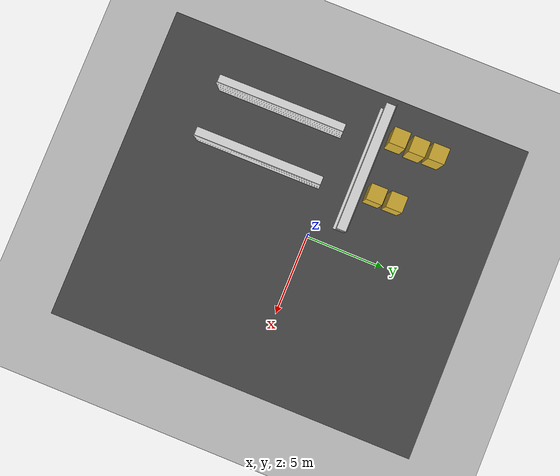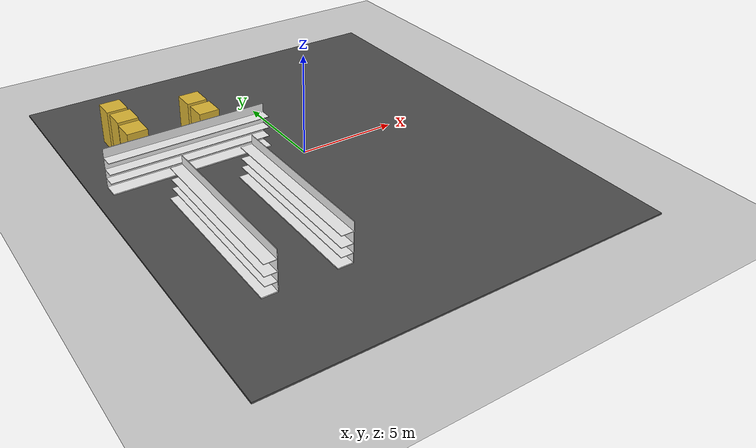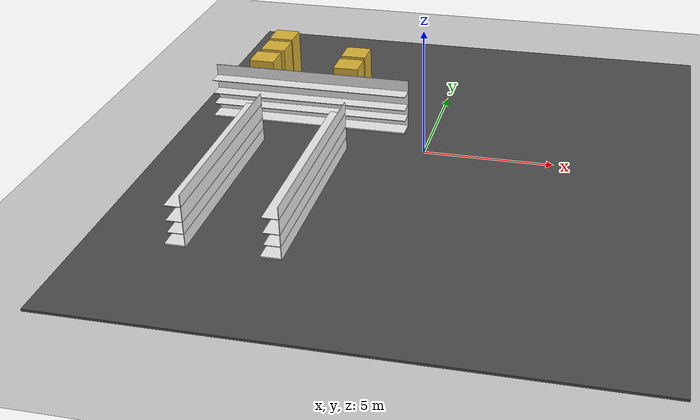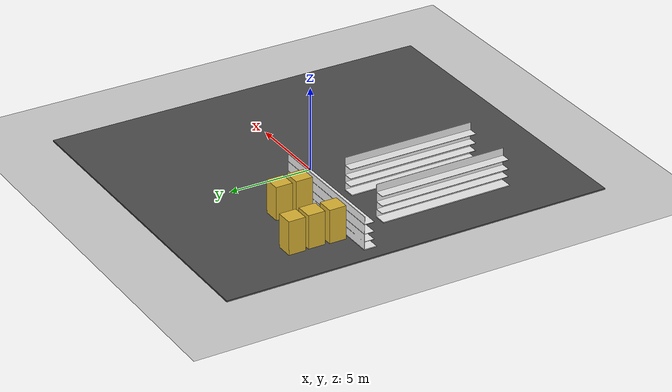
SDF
<sdf version="1.6">
 <world name="default">
  <model name="ground_plane">
   <static>1</static>
   <link name="link">
    <collision name="collision">
     <geometry><plane><normal>0 0 1</normal><size>100 100</size></plane></geometry>
     <surface>
      <contact><collide_bitmask>65535</collide_bitmask></contact>
      <friction><ode><mu>100</mu><mu2>50</mu2></ode></friction>
     </surface>
    </collision>
    <visual name="visual">
     <cast_shadows>0</cast_shadows>
     <geometry><plane><normal>0 0 1</normal><size>100 100</size></plane></geometry>
     <material>
      <script><uri>file://media/materials/scripts/gazebo.material</uri><name>Gazebo/Grey</name></script>
     </material>
    </visual>
   </link>
  </model>
  <model name="asphalt_plane">
   <static>1</static>
   <link name="link">
    <collision name="collision"><geometry><box><size>20 23.3157 0.1</size></box></geometry></collision>
    <visual name="visual">
     <cast_shadows>0</cast_shadows>
     <geometry><box><size>20 23.3157 0.1</size></box></geometry>
     <material>
      <script>
       <uri>model://asphalt_plane/materials/scripts</uri>
       <uri>model://asphalt_plane/materials/textures</uri>
       <name>vrc/asphalt</name>
      </script>
     </material>
    </visual>
   </link>
   <pose>0.082168 -0.989597 0 0 -0 0</pose>
  </model>
  <model name="LongShelfx4">
   <link name="link_0">
    <inertial>
     <mass>0.38468</mass>
     <inertia>
      <ixx>0.0321196</ixx>
      <ixy>0</ixy>
      <ixz>0</ixz>
      <iyy>2.41752</iyy>
      <iyz>0</iyz>
      <izz>2.44951</izz>
     </inertia>
    </inertial>
    <pose>-4.95428 0.681381 -0.638013 0 -0 0</pose>
    <visual name="visual">
     <geometry><box><size>8 0.75 0.05</size></box></geometry>
     <material>
      <lighting>1</lighting>
      <script><uri>file://media/materials/scripts/gazebo.material</uri><name>Gazebo/White</name></script>
      <shader type="vertex"><normal_map>__default__</normal_map></shader>
      <ambient>0.3 0.3 0.3 1</ambient>
      <diffuse>0.7 0.7 0.7 1</diffuse>
      <specular>0.01 0.01 0.01 1</specular>
      <emissive>0 0 0 1</emissive>
     </material>
    </visual>
    <collision name="collision">
     <geometry><box><size>8 0.75 0.05</size></box></geometry>
     <surface>
      <friction>
       <ode><mu>1</mu><mu2>1</mu2><fdir1>0 0 0</fdir1><slip1>0</slip1><slip2>0</slip2></ode>
       <torsional>
        <coefficient>1</coefficient>
        <patch_radius>0</patch_radius>
        <surface_radius>0</surface_radius>
        <use_patch_radius>1</use_patch_radius>
        <ode><slip>0</slip></ode>
       </torsional>
      </friction>
      <bounce><restitution_coefficient>0</restitution_coefficient><threshold>1e+06</threshold></bounce>
      <contact>
       <collide_without_contact>0</collide_without_contact>
       <collide_without_contact_bitmask>1</collide_without_contact_bitmask>
       <collide_bitmask>1</collide_bitmask>
       <ode>
        <soft_cfm>0</soft_cfm>
        <soft_erp>0.2</soft_erp>
        <kp>1e+13</kp>
        <kd>1</kd>
        <max_vel>0.01</max_vel>
        <min_depth>0</min_depth>
       </ode>
       <bullet>
        <split_impulse>1</split_impulse>
        <split_impulse_penetration_threshold>-0.01</split_impulse_penetration_threshold>
        <soft_cfm>0</soft_cfm>
        <soft_erp>0.2</soft_erp>
        <kp>1e+13</kp>
        <kd>1</kd>
       </bullet>
      </contact>
     </surface>
    </collision>
   </link>
   <link name="link_1">
    <inertial>
     <mass>0.748605</mass>
     <inertia><ixx>0.445095</ixx><ixy>0</ixy><ixz>0</ixz><iyy>5.12268</iyy><iyz>0</iyz><izz>4.67771</izz></inertia>
    </inertial>
    <pose>-4.95468 0.318881 0.335328 0 -0 0</pose>
    <visual name="visual">
     <geometry><box><size>8 0.025 2</size></box></geometry>
     <material>
      <lighting>1</lighting>
      <script><uri>file://media/materials/scripts/gazebo.material</uri><name>Gazebo/White</name></script>
      <shader type="vertex"><normal_map>__default__</normal_map></shader>
      <ambient>0.3 0.3 0.3 1</ambient>
      <diffuse>0.7 0.7 0.7 1</diffuse>
      <specular>0.01 0.01 0.01 1</specular>
      <emissive>0 0 0 1</emissive>
     </material>
    </visual>
    <collision name="collision">
     <geometry><box><size>8 0.025 2</size></box></geometry>
     <surface>
      <friction>
       <ode><mu>1</mu><mu2>1</mu2><fdir1>0 0 0</fdir1><slip1>0</slip1><slip2>0</slip2></ode>
       <torsional>
        <coefficient>1</coefficient>
        <patch_radius>0</patch_radius>
        <surface_radius>0</surface_radius>
        <use_patch_radius>1</use_patch_radius>
        <ode><slip>0</slip></ode>
       </torsional>
      </friction>
      <bounce><restitution_coefficient>0</restitution_coefficient><threshold>1e+06</threshold></bounce>
      <contact>
       <collide_without_contact>0</collide_without_contact>
       <collide_without_contact_bitmask>1</collide_without_contact_bitmask>
       <collide_bitmask>1</collide_bitmask>
       <ode>
        <soft_cfm>0</soft_cfm>
        <soft_erp>0.2</soft_erp>
        <kp>1e+13</kp>
        <kd>1</kd>
        <max_vel>0.01</max_vel>
        <min_depth>0</min_depth>
       </ode>
       <bullet>
        <split_impulse>1</split_impulse>
        <split_impulse_penetration_threshold>-0.01</split_impulse_penetration_threshold>
        <soft_cfm>0</soft_cfm>
        <soft_erp>0.2</soft_erp>
        <kp>1e+13</kp>
        <kd>1</kd>
       </bullet>
      </contact>
     </surface>
    </collision>
   </link>
   <link name="link_2">
    <inertial>
     <mass>0.0597214</mass>
     <inertia>
      <ixx>0.00742007</ixx>
      <ixy>0</ixy>
      <ixz>0</ixz>
      <iyy>0.00498871</iyy>
      <iyz>0</iyz>
      <izz>0.0123849</izz>
     </inertia>
    </inertial>
    <pose>-4.95438 0.606368 0.295639 0 -0 0</pose>
    <visual name="visual">
     <geometry><box><size>8 0.6 0.025</size></box></geometry>
     <material>
      <lighting>1</lighting>
      <script><uri>file://media/materials/scripts/gazebo.material</uri><name>Gazebo/White</name></script>
      <shader type="vertex"><normal_map>__default__</normal_map></shader>
      <ambient>0.3 0.3 0.3 1</ambient>
      <diffuse>0.7 0.7 0.7 1</diffuse>
      <specular>0.01 0.01 0.01 1</specular>
      <emissive>0 0 0 1</emissive>
     </material>
    </visual>
    <collision name="collision">
     <geometry><box><size>8 0.600001 0.025</size></box></geometry>
     <surface>
      <friction>
       <ode><mu>1</mu><mu2>1</mu2><fdir1>0 0 0</fdir1><slip1>0</slip1><slip2>0</slip2></ode>
       <torsional>
        <coefficient>1</coefficient>
        <patch_radius>0</patch_radius>
        <surface_radius>0</surface_radius>
        <use_patch_radius>1</use_patch_radius>
        <ode><slip>0</slip></ode>
       </torsional>
      </friction>
      <bounce><restitution_coefficient>0</restitution_coefficient><threshold>1e+06</threshold></bounce>
      <contact>
       <collide_without_contact>0</collide_without_contact>
       <collide_without_contact_bitmask>1</collide_without_contact_bitmask>
       <collide_bitmask>1</collide_bitmask>
       <ode>
        <soft_cfm>0</soft_cfm>
        <soft_erp>0.2</soft_erp>
        <kp>1e+13</kp>
        <kd>1</kd>
        <max_vel>0.01</max_vel>
        <min_depth>0</min_depth>
       </ode>
       <bullet>
        <split_impulse>1</split_impulse>
        <split_impulse_penetration_threshold>-0.01</split_impulse_penetration_threshold>
        <soft_cfm>0</soft_cfm>
        <soft_erp>0.2</soft_erp>
        <kp>1e+13</kp>
        <kd>1</kd>
       </bullet>
      </contact>
     </surface>
    </collision>
   </link>
   <link name="link_2_clone">
    <inertial>
     <mass>0.0597214</mass>
     <inertia>
      <ixx>0.00742007</ixx>
      <ixy>0</ixy>
      <ixz>0</ixz>
      <iyy>0.00498871</iyy>
      <iyz>0</iyz>
      <izz>0.0123849</izz>
     </inertia>
    </inertial>
    <pose>-4.95438 0.606361 0.871858 0 -0 0</pose>
    <visual name="visual">
     <geometry><box><size>8 0.6 0.025</size></box></geometry>
     <material>
      <lighting>1</lighting>
      <script><uri>file://media/materials/scripts/gazebo.material</uri><name>Gazebo/White</name></script>
      <shader type="vertex"><normal_map>__default__</normal_map></shader>
      <ambient>0.3 0.3 0.3 1</ambient>
      <diffuse>0.7 0.7 0.7 1</diffuse>
      <specular>0.01 0.01 0.01 1</specular>
      <emissive>0 0 0 1</emissive>
     </material>
    </visual>
    <collision name="collision">
     <geometry><box><size>8 0.600001 0.025</size></box></geometry>
     <surface>
      <friction>
       <ode><mu>1</mu><mu2>1</mu2><fdir1>0 0 0</fdir1><slip1>0</slip1><slip2>0</slip2></ode>
       <torsional>
        <coefficient>1</coefficient>
        <patch_radius>0</patch_radius>
        <surface_radius>0</surface_radius>
        <use_patch_radius>1</use_patch_radius>
        <ode><slip>0</slip></ode>
       </torsional>
      </friction>
      <bounce><restitution_coefficient>0</restitution_coefficient><threshold>1e+06</threshold></bounce>
      <contact>
       <collide_without_contact>0</collide_without_contact>
       <collide_without_contact_bitmask>1</collide_without_contact_bitmask>
       <collide_bitmask>1</collide_bitmask>
       <ode>
        <soft_cfm>0</soft_cfm>
        <soft_erp>0.2</soft_erp>
        <kp>1e+13</kp>
        <kd>1</kd>
        <max_vel>0.01</max_vel>
        <min_depth>0</min_depth>
       </ode>
       <bullet>
        <split_impulse>1</split_impulse>
        <split_impulse_penetration_threshold>-0.01</split_impulse_penetration_threshold>
        <soft_cfm>0</soft_cfm>
        <soft_erp>0.2</soft_erp>
        <kp>1e+13</kp>
        <kd>1</kd>
       </bullet>
      </contact>
     </surface>
    </collision>
   </link>
   <link name="link_2_clone_0">
    <inertial>
     <mass>0.0597214</mass>
     <inertia>
      <ixx>0.00742007</ixx>
      <ixy>0</ixy>
      <ixz>0</ixz>
      <iyy>0.00498871</iyy>
      <iyz>0</iyz>
      <izz>0.0123849</izz>
     </inertia>
    </inertial>
    <pose>-4.95438 0.606375 -0.163574 0 -0 0</pose>
    <visual name="visual">
     <geometry><box><size>8 0.6 0.025</size></box></geometry>
     <material>
      <lighting>1</lighting>
      <script><uri>file://media/materials/scripts/gazebo.material</uri><name>Gazebo/White</name></script>
      <shader type="vertex"><normal_map>__default__</normal_map></shader>
      <ambient>0.3 0.3 0.3 1</ambient>
      <diffuse>0.7 0.7 0.7 1</diffuse>
      <specular>0.01 0.01 0.01 1</specular>
      <emissive>0 0 0 1</emissive>
     </material>
    </visual>
    <collision name="collision">
     <geometry><box><size>8 0.600001 0.025</size></box></geometry>
     <surface>
      <friction>
       <ode><mu>1</mu><mu2>1</mu2><fdir1>0 0 0</fdir1><slip1>0</slip1><slip2>0</slip2></ode>
       <torsional>
        <coefficient>1</coefficient>
        <patch_radius>0</patch_radius>
        <surface_radius>0</surface_radius>
        <use_patch_radius>1</use_patch_radius>
        <ode><slip>0</slip></ode>
       </torsional>
      </friction>
      <bounce><restitution_coefficient>0</restitution_coefficient><threshold>1e+06</threshold></bounce>
      <contact>
       <collide_without_contact>0</collide_without_contact>
       <collide_without_contact_bitmask>1</collide_without_contact_bitmask>
       <collide_bitmask>1</collide_bitmask>
       <ode>
        <soft_cfm>0</soft_cfm>
        <soft_erp>0.2</soft_erp>
        <kp>1e+13</kp>
        <kd>1</kd>
        <max_vel>0.01</max_vel>
        <min_depth>0</min_depth>
       </ode>
       <bullet>
        <split_impulse>1</split_impulse>
        <split_impulse_penetration_threshold>-0.01</split_impulse_penetration_threshold>
        <soft_cfm>0</soft_cfm>
        <soft_erp>0.2</soft_erp>
        <kp>1e+13</kp>
        <kd>1</kd>
       </bullet>
      </contact>
     </surface>
    </collision>
   </link>
   <joint name="link_1_JOINT_4" type="fixed">
    <parent>link_1</parent>
    <child>link_0</child>
    <physics>
     <ode><limit><cfm>0</cfm><erp>0.2</erp></limit><suspension><cfm>0</cfm><erp>0.2</erp></suspension></ode>
    </physics>
   </joint>
   <joint name="link_1_JOINT_5" type="fixed">
    <parent>link_1</parent>
    <child>link_2_clone_0</child>
    <physics>
     <ode><limit><cfm>0</cfm><erp>0.2</erp></limit><suspension><cfm>0</cfm><erp>0.2</erp></suspension></ode>
    </physics>
   </joint>
   <joint name="link_1_JOINT_6" type="fixed">
    <parent>link_1</parent>
    <child>link_2</child>
    <physics>
     <ode><limit><cfm>0</cfm><erp>0.2</erp></limit><suspension><cfm>0</cfm><erp>0.2</erp></suspension></ode>
    </physics>
   </joint>
   <joint name="link_1_JOINT_7" type="fixed">
    <parent>link_1</parent>
    <child>link_2_clone</child>
    <physics>
     <ode><limit><cfm>0</cfm><erp>0.2</erp></limit><suspension><cfm>0</cfm><erp>0.2</erp></suspension></ode>
    </physics>
   </joint>
   <static>0</static>
   <pose>-10.0239 2.31947 0.715428 -0.002288 -0 -3.14125</pose>
  </model>
  <model name="LongShelfx4_clone_0_clone">
   <link name="link_0">
    <inertial>
     <mass>0.38468</mass>
     <inertia>
      <ixx>0.0321196</ixx>
      <ixy>0</ixy>
      <ixz>0</ixz>
      <iyy>2.41752</iyy>
      <iyz>0</iyz>
      <izz>2.44951</izz>
     </inertia>
    </inertial>
    <pose>-4.95428 0.681381 -0.638013 0 -0 0</pose>
    <visual name="visual">
     <geometry><box><size>8 0.75 0.05</size></box></geometry>
     <material>
      <lighting>1</lighting>
      <script><uri>file://media/materials/scripts/gazebo.material</uri><name>Gazebo/White</name></script>
      <shader type="vertex"><normal_map>__default__</normal_map></shader>
      <ambient>0.3 0.3 0.3 1</ambient>
      <diffuse>0.7 0.7 0.7 1</diffuse>
      <specular>0.01 0.01 0.01 1</specular>
      <emissive>0 0 0 1</emissive>
     </material>
    </visual>
    <collision name="collision">
     <geometry><box><size>8 0.75 0.05</size></box></geometry>
     <surface>
      <friction>
       <ode><mu>1</mu><mu2>1</mu2><fdir1>0 0 0</fdir1><slip1>0</slip1><slip2>0</slip2></ode>
       <torsional>
        <coefficient>1</coefficient>
        <patch_radius>0</patch_radius>
        <surface_radius>0</surface_radius>
        <use_patch_radius>1</use_patch_radius>
        <ode><slip>0</slip></ode>
       </torsional>
      </friction>
      <bounce><restitution_coefficient>0</restitution_coefficient><threshold>1e+06</threshold></bounce>
      <contact>
       <collide_without_contact>0</collide_without_contact>
       <collide_without_contact_bitmask>1</collide_without_contact_bitmask>
       <collide_bitmask>1</collide_bitmask>
       <ode>
        <soft_cfm>0</soft_cfm>
        <soft_erp>0.2</soft_erp>
        <kp>1e+13</kp>
        <kd>1</kd>
        <max_vel>0.01</max_vel>
        <min_depth>0</min_depth>
       </ode>
       <bullet>
        <split_impulse>1</split_impulse>
        <split_impulse_penetration_threshold>-0.01</split_impulse_penetration_threshold>
        <soft_cfm>0</soft_cfm>
        <soft_erp>0.2</soft_erp>
        <kp>1e+13</kp>
        <kd>1</kd>
       </bullet>
      </contact>
     </surface>
    </collision>
   </link>
   <link name="link_1">
    <inertial>
     <mass>0.748605</mass>
     <inertia><ixx>0.445095</ixx><ixy>0</ixy><ixz>0</ixz><iyy>5.12268</iyy><iyz>0</iyz><izz>4.67771</izz></inertia>
    </inertial>
    <pose>-4.95468 0.318881 0.335328 0 -0 0</pose>
    <visual name="visual">
     <geometry><box><size>8 0.025 2</size></box></geometry>
     <material>
      <lighting>1</lighting>
      <script><uri>file://media/materials/scripts/gazebo.material</uri><name>Gazebo/White</name></script>
      <shader type="vertex"><normal_map>__default__</normal_map></shader>
      <ambient>0.3 0.3 0.3 1</ambient>
      <diffuse>0.7 0.7 0.7 1</diffuse>
      <specular>0.01 0.01 0.01 1</specular>
      <emissive>0 0 0 1</emissive>
     </material>
    </visual>
    <collision name="collision">
     <geometry><box><size>8 0.025 2</size></box></geometry>
     <surface>
      <friction>
       <ode><mu>1</mu><mu2>1</mu2><fdir1>0 0 0</fdir1><slip1>0</slip1><slip2>0</slip2></ode>
       <torsional>
        <coefficient>1</coefficient>
        <patch_radius>0</patch_radius>
        <surface_radius>0</surface_radius>
        <use_patch_radius>1</use_patch_radius>
        <ode><slip>0</slip></ode>
       </torsional>
      </friction>
      <bounce><restitution_coefficient>0</restitution_coefficient><threshold>1e+06</threshold></bounce>
      <contact>
       <collide_without_contact>0</collide_without_contact>
       <collide_without_contact_bitmask>1</collide_without_contact_bitmask>
       <collide_bitmask>1</collide_bitmask>
       <ode>
        <soft_cfm>0</soft_cfm>
        <soft_erp>0.2</soft_erp>
        <kp>1e+13</kp>
        <kd>1</kd>
        <max_vel>0.01</max_vel>
        <min_depth>0</min_depth>
       </ode>
       <bullet>
        <split_impulse>1</split_impulse>
        <split_impulse_penetration_threshold>-0.01</split_impulse_penetration_threshold>
        <soft_cfm>0</soft_cfm>
        <soft_erp>0.2</soft_erp>
        <kp>1e+13</kp>
        <kd>1</kd>
       </bullet>
      </contact>
     </surface>
    </collision>
   </link>
   <link name="link_2">
    <inertial>
     <mass>0.0597214</mass>
     <inertia>
      <ixx>0.00742007</ixx>
      <ixy>0</ixy>
      <ixz>0</ixz>
      <iyy>0.00498871</iyy>
      <iyz>0</iyz>
      <izz>0.0123849</izz>
     </inertia>
    </inertial>
    <pose>-4.95438 0.606368 0.295639 0 -0 0</pose>
    <visual name="visual">
     <geometry><box><size>8 0.6 0.025</size></box></geometry>
     <material>
      <lighting>1</lighting>
      <script><uri>file://media/materials/scripts/gazebo.material</uri><name>Gazebo/White</name></script>
      <shader type="vertex"><normal_map>__default__</normal_map></shader>
      <ambient>0.3 0.3 0.3 1</ambient>
      <diffuse>0.7 0.7 0.7 1</diffuse>
      <specular>0.01 0.01 0.01 1</specular>
      <emissive>0 0 0 1</emissive>
     </material>
    </visual>
    <collision name="collision">
     <geometry><box><size>8 0.600001 0.025</size></box></geometry>
     <surface>
      <friction>
       <ode><mu>1</mu><mu2>1</mu2><fdir1>0 0 0</fdir1><slip1>0</slip1><slip2>0</slip2></ode>
       <torsional>
        <coefficient>1</coefficient>
        <patch_radius>0</patch_radius>
        <surface_radius>0</surface_radius>
        <use_patch_radius>1</use_patch_radius>
        <ode><slip>0</slip></ode>
       </torsional>
      </friction>
      <bounce><restitution_coefficient>0</restitution_coefficient><threshold>1e+06</threshold></bounce>
      <contact>
       <collide_without_contact>0</collide_without_contact>
       <collide_without_contact_bitmask>1</collide_without_contact_bitmask>
       <collide_bitmask>1</collide_bitmask>
       <ode>
        <soft_cfm>0</soft_cfm>
        <soft_erp>0.2</soft_erp>
        <kp>1e+13</kp>
        <kd>1</kd>
        <max_vel>0.01</max_vel>
        <min_depth>0</min_depth>
       </ode>
       <bullet>
        <split_impulse>1</split_impulse>
        <split_impulse_penetration_threshold>-0.01</split_impulse_penetration_threshold>
        <soft_cfm>0</soft_cfm>
        <soft_erp>0.2</soft_erp>
        <kp>1e+13</kp>
        <kd>1</kd>
       </bullet>
      </contact>
     </surface>
    </collision>
   </link>
   <link name="link_2_clone">
    <inertial>
     <mass>0.0597214</mass>
     <inertia>
      <ixx>0.00742007</ixx>
      <ixy>0</ixy>
      <ixz>0</ixz>
      <iyy>0.00498871</iyy>
      <iyz>0</iyz>
      <izz>0.0123849</izz>
     </inertia>
    </inertial>
    <pose>-4.95438 0.606361 0.871858 0 -0 0</pose>
    <visual name="visual">
     <geometry><box><size>8 0.6 0.025</size></box></geometry>
     <material>
      <lighting>1</lighting>
      <script><uri>file://media/materials/scripts/gazebo.material</uri><name>Gazebo/White</name></script>
      <shader type="vertex"><normal_map>__default__</normal_map></shader>
      <ambient>0.3 0.3 0.3 1</ambient>
      <diffuse>0.7 0.7 0.7 1</diffuse>
      <specular>0.01 0.01 0.01 1</specular>
      <emissive>0 0 0 1</emissive>
     </material>
    </visual>
    <collision name="collision">
     <geometry><box><size>8 0.600001 0.025</size></box></geometry>
     <surface>
      <friction>
       <ode><mu>1</mu><mu2>1</mu2><fdir1>0 0 0</fdir1><slip1>0</slip1><slip2>0</slip2></ode>
       <torsional>
        <coefficient>1</coefficient>
        <patch_radius>0</patch_radius>
        <surface_radius>0</surface_radius>
        <use_patch_radius>1</use_patch_radius>
        <ode><slip>0</slip></ode>
       </torsional>
      </friction>
      <bounce><restitution_coefficient>0</restitution_coefficient><threshold>1e+06</threshold></bounce>
      <contact>
       <collide_without_contact>0</collide_without_contact>
       <collide_without_contact_bitmask>1</collide_without_contact_bitmask>
       <collide_bitmask>1</collide_bitmask>
       <ode>
        <soft_cfm>0</soft_cfm>
        <soft_erp>0.2</soft_erp>
        <kp>1e+13</kp>
        <kd>1</kd>
        <max_vel>0.01</max_vel>
        <min_depth>0</min_depth>
       </ode>
       <bullet>
        <split_impulse>1</split_impulse>
        <split_impulse_penetration_threshold>-0.01</split_impulse_penetration_threshold>
        <soft_cfm>0</soft_cfm>
        <soft_erp>0.2</soft_erp>
        <kp>1e+13</kp>
        <kd>1</kd>
       </bullet>
      </contact>
     </surface>
    </collision>
   </link>
   <link name="link_2_clone_0">
    <inertial>
     <mass>0.0597214</mass>
     <inertia>
      <ixx>0.00742007</ixx>
      <ixy>0</ixy>
      <ixz>0</ixz>
      <iyy>0.00498871</iyy>
      <iyz>0</iyz>
      <izz>0.0123849</izz>
     </inertia>
    </inertial>
    <pose>-4.95438 0.606375 -0.163574 0 -0 0</pose>
    <visual name="visual">
     <geometry><box><size>8 0.6 0.025</size></box></geometry>
     <material>
      <lighting>1</lighting>
      <script><uri>file://media/materials/scripts/gazebo.material</uri><name>Gazebo/White</name></script>
      <shader type="vertex"><normal_map>__default__</normal_map></shader>
      <ambient>0.3 0.3 0.3 1</ambient>
      <diffuse>0.7 0.7 0.7 1</diffuse>
      <specular>0.01 0.01 0.01 1</specular>
      <emissive>0 0 0 1</emissive>
     </material>
    </visual>
    <collision name="collision">
     <geometry><box><size>8 0.600001 0.025</size></box></geometry>
     <surface>
      <friction>
       <ode><mu>1</mu><mu2>1</mu2><fdir1>0 0 0</fdir1><slip1>0</slip1><slip2>0</slip2></ode>
       <torsional>
        <coefficient>1</coefficient>
        <patch_radius>0</patch_radius>
        <surface_radius>0</surface_radius>
        <use_patch_radius>1</use_patch_radius>
        <ode><slip>0</slip></ode>
       </torsional>
      </friction>
      <bounce><restitution_coefficient>0</restitution_coefficient><threshold>1e+06</threshold></bounce>
      <contact>
       <collide_without_contact>0</collide_without_contact>
       <collide_without_contact_bitmask>1</collide_without_contact_bitmask>
       <collide_bitmask>1</collide_bitmask>
       <ode>
        <soft_cfm>0</soft_cfm>
        <soft_erp>0.2</soft_erp>
        <kp>1e+13</kp>
        <kd>1</kd>
        <max_vel>0.01</max_vel>
        <min_depth>0</min_depth>
       </ode>
       <bullet>
        <split_impulse>1</split_impulse>
        <split_impulse_penetration_threshold>-0.01</split_impulse_penetration_threshold>
        <soft_cfm>0</soft_cfm>
        <soft_erp>0.2</soft_erp>
        <kp>1e+13</kp>
        <kd>1</kd>
       </bullet>
      </contact>
     </surface>
    </collision>
   </link>
   <joint name="link_1_JOINT_4" type="fixed">
    <parent>link_1</parent>
    <child>link_0</child>
    <physics>
     <ode><limit><cfm>0</cfm><erp>0.2</erp></limit><suspension><cfm>0</cfm><erp>0.2</erp></suspension></ode>
    </physics>
   </joint>
   <joint name="link_1_JOINT_5" type="fixed">
    <parent>link_1</parent>
    <child>link_2_clone_0</child>
    <physics>
     <ode><limit><cfm>0</cfm><erp>0.2</erp></limit><suspension><cfm>0</cfm><erp>0.2</erp></suspension></ode>
    </physics>
   </joint>
   <joint name="link_1_JOINT_6" type="fixed">
    <parent>link_1</parent>
    <child>link_2</child>
    <physics>
     <ode><limit><cfm>0</cfm><erp>0.2</erp></limit><suspension><cfm>0</cfm><erp>0.2</erp></suspension></ode>
    </physics>
   </joint>
   <joint name="link_1_JOINT_7" type="fixed">
    <parent>link_1</parent>
    <child>link_2_clone</child>
    <physics>
     <ode><limit><cfm>0</cfm><erp>0.2</erp></limit><suspension><cfm>0</cfm><erp>0.2</erp></suspension></ode>
    </physics>
   </joint>
   <static>0</static>
   <pose>-6.06742 0.616008 0.715417 -0.002288 1e-06 1.5737</pose>
  </model>
  <model name="LongShelfx4_clone_0_clone_clone_clone">
   <link name="link_0">
    <inertial>
     <mass>0.38468</mass>
     <inertia>
      <ixx>0.0321196</ixx>
      <ixy>0</ixy>
      <ixz>0</ixz>
      <iyy>2.41752</iyy>
      <iyz>0</iyz>
      <izz>2.44951</izz>
     </inertia>
    </inertial>
    <pose>-4.95428 0.681381 -0.638013 0 -0 0</pose>
    <visual name="visual">
     <geometry><box><size>8 0.75 0.05</size></box></geometry>
     <material>
      <lighting>1</lighting>
      <script><uri>file://media/materials/scripts/gazebo.material</uri><name>Gazebo/White</name></script>
      <shader type="vertex"><normal_map>__default__</normal_map></shader>
      <ambient>0.3 0.3 0.3 1</ambient>
      <diffuse>0.7 0.7 0.7 1</diffuse>
      <specular>0.01 0.01 0.01 1</specular>
      <emissive>0 0 0 1</emissive>
     </material>
    </visual>
    <collision name="collision">
     <geometry><box><size>8 0.75 0.05</size></box></geometry>
     <surface>
      <friction>
       <ode><mu>1</mu><mu2>1</mu2><fdir1>0 0 0</fdir1><slip1>0</slip1><slip2>0</slip2></ode>
       <torsional>
        <coefficient>1</coefficient>
        <patch_radius>0</patch_radius>
        <surface_radius>0</surface_radius>
        <use_patch_radius>1</use_patch_radius>
        <ode><slip>0</slip></ode>
       </torsional>
      </friction>
      <bounce><restitution_coefficient>0</restitution_coefficient><threshold>1e+06</threshold></bounce>
      <contact>
       <collide_without_contact>0</collide_without_contact>
       <collide_without_contact_bitmask>1</collide_without_contact_bitmask>
       <collide_bitmask>1</collide_bitmask>
       <ode>
        <soft_cfm>0</soft_cfm>
        <soft_erp>0.2</soft_erp>
        <kp>1e+13</kp>
        <kd>1</kd>
        <max_vel>0.01</max_vel>
        <min_depth>0</min_depth>
       </ode>
       <bullet>
        <split_impulse>1</split_impulse>
        <split_impulse_penetration_threshold>-0.01</split_impulse_penetration_threshold>
        <soft_cfm>0</soft_cfm>
        <soft_erp>0.2</soft_erp>
        <kp>1e+13</kp>
        <kd>1</kd>
       </bullet>
      </contact>
     </surface>
    </collision>
   </link>
   <link name="link_1">
    <inertial>
     <mass>0.748605</mass>
     <inertia><ixx>0.445095</ixx><ixy>0</ixy><ixz>0</ixz><iyy>5.12268</iyy><iyz>0</iyz><izz>4.67771</izz></inertia>
    </inertial>
    <pose>-4.95468 0.318881 0.335328 0 -0 0</pose>
    <visual name="visual">
     <geometry><box><size>8 0.025 2</size></box></geometry>
     <material>
      <lighting>1</lighting>
      <script><uri>file://media/materials/scripts/gazebo.material</uri><name>Gazebo/White</name></script>
      <shader type="vertex"><normal_map>__default__</normal_map></shader>
      <ambient>0.3 0.3 0.3 1</ambient>
      <diffuse>0.7 0.7 0.7 1</diffuse>
      <specular>0.01 0.01 0.01 1</specular>
      <emissive>0 0 0 1</emissive>
     </material>
    </visual>
    <collision name="collision">
     <geometry><box><size>8 0.025 2</size></box></geometry>
     <surface>
      <friction>
       <ode><mu>1</mu><mu2>1</mu2><fdir1>0 0 0</fdir1><slip1>0</slip1><slip2>0</slip2></ode>
       <torsional>
        <coefficient>1</coefficient>
        <patch_radius>0</patch_radius>
        <surface_radius>0</surface_radius>
        <use_patch_radius>1</use_patch_radius>
        <ode><slip>0</slip></ode>
       </torsional>
      </friction>
      <bounce><restitution_coefficient>0</restitution_coefficient><threshold>1e+06</threshold></bounce>
      <contact>
       <collide_without_contact>0</collide_without_contact>
       <collide_without_contact_bitmask>1</collide_without_contact_bitmask>
       <collide_bitmask>1</collide_bitmask>
       <ode>
        <soft_cfm>0</soft_cfm>
        <soft_erp>0.2</soft_erp>
        <kp>1e+13</kp>
        <kd>1</kd>
        <max_vel>0.01</max_vel>
        <min_depth>0</min_depth>
       </ode>
       <bullet>
        <split_impulse>1</split_impulse>
        <split_impulse_penetration_threshold>-0.01</split_impulse_penetration_threshold>
        <soft_cfm>0</soft_cfm>
        <soft_erp>0.2</soft_erp>
        <kp>1e+13</kp>
        <kd>1</kd>
       </bullet>
      </contact>
     </surface>
    </collision>
   </link>
   <link name="link_2">
    <inertial>
     <mass>0.0597214</mass>
     <inertia>
      <ixx>0.00742007</ixx>
      <ixy>0</ixy>
      <ixz>0</ixz>
      <iyy>0.00498871</iyy>
      <iyz>0</iyz>
      <izz>0.0123849</izz>
     </inertia>
    </inertial>
    <pose>-4.95438 0.606368 0.295639 0 -0 0</pose>
    <visual name="visual">
     <geometry><box><size>8 0.6 0.025</size></box></geometry>
     <material>
      <lighting>1</lighting>
      <script><uri>file://media/materials/scripts/gazebo.material</uri><name>Gazebo/White</name></script>
      <shader type="vertex"><normal_map>__default__</normal_map></shader>
      <ambient>0.3 0.3 0.3 1</ambient>
      <diffuse>0.7 0.7 0.7 1</diffuse>
      <specular>0.01 0.01 0.01 1</specular>
      <emissive>0 0 0 1</emissive>
     </material>
    </visual>
    <collision name="collision">
     <geometry><box><size>8 0.600001 0.025</size></box></geometry>
     <surface>
      <friction>
       <ode><mu>1</mu><mu2>1</mu2><fdir1>0 0 0</fdir1><slip1>0</slip1><slip2>0</slip2></ode>
       <torsional>
        <coefficient>1</coefficient>
        <patch_radius>0</patch_radius>
        <surface_radius>0</surface_radius>
        <use_patch_radius>1</use_patch_radius>
        <ode><slip>0</slip></ode>
       </torsional>
      </friction>
      <bounce><restitution_coefficient>0</restitution_coefficient><threshold>1e+06</threshold></bounce>
      <contact>
       <collide_without_contact>0</collide_without_contact>
       <collide_without_contact_bitmask>1</collide_without_contact_bitmask>
       <collide_bitmask>1</collide_bitmask>
       <ode>
        <soft_cfm>0</soft_cfm>
        <soft_erp>0.2</soft_erp>
        <kp>1e+13</kp>
        <kd>1</kd>
        <max_vel>0.01</max_vel>
        <min_depth>0</min_depth>
       </ode>
       <bullet>
        <split_impulse>1</split_impulse>
        <split_impulse_penetration_threshold>-0.01</split_impulse_penetration_threshold>
        <soft_cfm>0</soft_cfm>
        <soft_erp>0.2</soft_erp>
        <kp>1e+13</kp>
        <kd>1</kd>
       </bullet>
      </contact>
     </surface>
    </collision>
   </link>
   <link name="link_2_clone">
    <inertial>
     <mass>0.0597214</mass>
     <inertia>
      <ixx>0.00742007</ixx>
      <ixy>0</ixy>
      <ixz>0</ixz>
      <iyy>0.00498871</iyy>
      <iyz>0</iyz>
      <izz>0.0123849</izz>
     </inertia>
    </inertial>
    <pose>-4.95438 0.606361 0.871858 0 -0 0</pose>
    <visual name="visual">
     <geometry><box><size>8 0.6 0.025</size></box></geometry>
     <material>
      <lighting>1</lighting>
      <script><uri>file://media/materials/scripts/gazebo.material</uri><name>Gazebo/White</name></script>
      <shader type="vertex"><normal_map>__default__</normal_map></shader>
      <ambient>0.3 0.3 0.3 1</ambient>
      <diffuse>0.7 0.7 0.7 1</diffuse>
      <specular>0.01 0.01 0.01 1</specular>
      <emissive>0 0 0 1</emissive>
     </material>
    </visual>
    <collision name="collision">
     <geometry><box><size>8 0.600001 0.025</size></box></geometry>
     <surface>
      <friction>
       <ode><mu>1</mu><mu2>1</mu2><fdir1>0 0 0</fdir1><slip1>0</slip1><slip2>0</slip2></ode>
       <torsional>
        <coefficient>1</coefficient>
        <patch_radius>0</patch_radius>
        <surface_radius>0</surface_radius>
        <use_patch_radius>1</use_patch_radius>
        <ode><slip>0</slip></ode>
       </torsional>
      </friction>
      <bounce><restitution_coefficient>0</restitution_coefficient><threshold>1e+06</threshold></bounce>
      <contact>
       <collide_without_contact>0</collide_without_contact>
       <collide_without_contact_bitmask>1</collide_without_contact_bitmask>
       <collide_bitmask>1</collide_bitmask>
       <ode>
        <soft_cfm>0</soft_cfm>
        <soft_erp>0.2</soft_erp>
        <kp>1e+13</kp>
        <kd>1</kd>
        <max_vel>0.01</max_vel>
        <min_depth>0</min_depth>
       </ode>
       <bullet>
        <split_impulse>1</split_impulse>
        <split_impulse_penetration_threshold>-0.01</split_impulse_penetration_threshold>
        <soft_cfm>0</soft_cfm>
        <soft_erp>0.2</soft_erp>
        <kp>1e+13</kp>
        <kd>1</kd>
       </bullet>
      </contact>
     </surface>
    </collision>
   </link>
   <link name="link_2_clone_0">
    <inertial>
     <mass>0.0597214</mass>
     <inertia>
      <ixx>0.00742007</ixx>
      <ixy>0</ixy>
      <ixz>0</ixz>
      <iyy>0.00498871</iyy>
      <iyz>0</iyz>
      <izz>0.0123849</izz>
     </inertia>
    </inertial>
    <pose>-4.95438 0.606375 -0.163574 0 -0 0</pose>
    <visual name="visual">
     <geometry><box><size>8 0.6 0.025</size></box></geometry>
     <material>
      <lighting>1</lighting>
      <script><uri>file://media/materials/scripts/gazebo.material</uri><name>Gazebo/White</name></script>
      <shader type="vertex"><normal_map>__default__</normal_map></shader>
      <ambient>0.3 0.3 0.3 1</ambient>
      <diffuse>0.7 0.7 0.7 1</diffuse>
      <specular>0.01 0.01 0.01 1</specular>
      <emissive>0 0 0 1</emissive>
     </material>
    </visual>
    <collision name="collision">
     <geometry><box><size>8 0.600001 0.025</size></box></geometry>
     <surface>
      <friction>
       <ode><mu>1</mu><mu2>1</mu2><fdir1>0 0 0</fdir1><slip1>0</slip1><slip2>0</slip2></ode>
       <torsional>
        <coefficient>1</coefficient>
        <patch_radius>0</patch_radius>
        <surface_radius>0</surface_radius>
        <use_patch_radius>1</use_patch_radius>
        <ode><slip>0</slip></ode>
       </torsional>
      </friction>
      <bounce><restitution_coefficient>0</restitution_coefficient><threshold>1e+06</threshold></bounce>
      <contact>
       <collide_without_contact>0</collide_without_contact>
       <collide_without_contact_bitmask>1</collide_without_contact_bitmask>
       <collide_bitmask>1</collide_bitmask>
       <ode>
        <soft_cfm>0</soft_cfm>
        <soft_erp>0.2</soft_erp>
        <kp>1e+13</kp>
        <kd>1</kd>
        <max_vel>0.01</max_vel>
        <min_depth>0</min_depth>
       </ode>
       <bullet>
        <split_impulse>1</split_impulse>
        <split_impulse_penetration_threshold>-0.01</split_impulse_penetration_threshold>
        <soft_cfm>0</soft_cfm>
        <soft_erp>0.2</soft_erp>
        <kp>1e+13</kp>
        <kd>1</kd>
       </bullet>
      </contact>
     </surface>
    </collision>
   </link>
   <joint name="link_1_JOINT_4" type="fixed">
    <parent>link_1</parent>
    <child>link_0</child>
    <physics>
     <ode><limit><cfm>0</cfm><erp>0.2</erp></limit><suspension><cfm>0</cfm><erp>0.2</erp></suspension></ode>
    </physics>
   </joint>
   <joint name="link_1_JOINT_5" type="fixed">
    <parent>link_1</parent>
    <child>link_2_clone_0</child>
    <physics>
     <ode><limit><cfm>0</cfm><erp>0.2</erp></limit><suspension><cfm>0</cfm><erp>0.2</erp></suspension></ode>
    </physics>
   </joint>
   <joint name="link_1_JOINT_6" type="fixed">
    <parent>link_1</parent>
    <child>link_2</child>
    <physics>
     <ode><limit><cfm>0</cfm><erp>0.2</erp></limit><suspension><cfm>0</cfm><erp>0.2</erp></suspension></ode>
    </physics>
   </joint>
   <joint name="link_1_JOINT_7" type="fixed">
    <parent>link_1</parent>
    <child>link_2_clone</child>
    <physics>
     <ode><limit><cfm>0</cfm><erp>0.2</erp></limit><suspension><cfm>0</cfm><erp>0.2</erp></suspension></ode>
    </physics>
   </joint>
   <static>0</static>
   <pose>-2.67973 0.542727 0.715429 -0.002288 -0 1.57278</pose>
  </model>
  <model name="cube_1x1x2_clone">
   <link name="link">
    <pose>0 0 0.05 0 -0 0</pose>
    <inertial>
     <mass>0.5167</mass>
     <inertia>
      <ixx>0.00086117</ixx>
      <ixy>0</ixy>
      <ixz>0</ixz>
      <iyy>0.00086117</iyy>
      <iyz>0</iyz>
      <izz>0.00086117</izz>
     </inertia>
    </inertial>
    <visual name="visual">
     <geometry><box><size>1 1 2</size></box></geometry>
     <material>
      <script><uri>file://media/materials/scripts/gazebo.material</uri><name>Gazebo/Gold</name></script>
      <shader type="vertex"><normal_map>__default__</normal_map></shader>
      <ambient>1 1 1 1</ambient>
      <diffuse>1 1 1 1</diffuse>
      <specular>0.2 0.2 0.2 1</specular>
      <emissive>0 0 0 1</emissive>
     </material>
    </visual>
    <collision name="collision">
     <geometry><box><size>1 1 2</size></box></geometry>
     <surface>
      <friction>
       <ode><mu>1</mu><mu2>1</mu2><fdir1>0 0 0</fdir1><slip1>0</slip1><slip2>0</slip2></ode>
       <torsional>
        <coefficient>1</coefficient>
        <patch_radius>0</patch_radius>
        <surface_radius>0.01</surface_radius>
        <use_patch_radius>0</use_patch_radius>
        <ode><slip>0</slip></ode>
       </torsional>
      </friction>
      <bounce><restitution_coefficient>0</restitution_coefficient><threshold>1e+06</threshold></bounce>
      <contact>
       <collide_without_contact>0</collide_without_contact>
       <collide_without_contact_bitmask>1</collide_without_contact_bitmask>
       <collide_bitmask>1</collide_bitmask>
       <ode>
        <soft_cfm>0</soft_cfm>
        <soft_erp>0.2</soft_erp>
        <kp>100000</kp>
        <kd>100</kd>
        <max_vel>100</max_vel>
        <min_depth>0.001</min_depth>
       </ode>
       <bullet>
        <split_impulse>1</split_impulse>
        <split_impulse_penetration_threshold>-0.01</split_impulse_penetration_threshold>
        <soft_cfm>0</soft_cfm>
        <soft_erp>0.2</soft_erp>
        <kp>100000</kp>
        <kd>100</kd>
       </bullet>
      </contact>
     </surface>
    </collision>
   </link>
   <static>0</static>
   <pose>-7.27131 2.85061 1.14401 4e-06 -0.000179 0.001006</pose>
  </model>
  <model name="cube_1x1x2_clone_clone">
   <link name="link">
    <pose>0 0 0.05 0 -0 0</pose>
    <inertial>
     <mass>0.5167</mass>
     <inertia>
      <ixx>0.00086117</ixx>
      <ixy>0</ixy>
      <ixz>0</ixz>
      <iyy>0.00086117</iyy>
      <iyz>0</iyz>
      <izz>0.00086117</izz>
     </inertia>
    </inertial>
    <visual name="visual">
     <geometry><box><size>1 1 2</size></box></geometry>
     <material>
      <script><uri>file://media/materials/scripts/gazebo.material</uri><name>Gazebo/Gold</name></script>
      <shader type="vertex"><normal_map>__default__</normal_map></shader>
      <ambient>1 1 1 1</ambient>
      <diffuse>1 1 1 1</diffuse>
      <specular>0.2 0.2 0.2 1</specular>
      <emissive>0 0 0 1</emissive>
     </material>
    </visual>
    <collision name="collision">
     <geometry><box><size>1 1 2</size></box></geometry>
     <surface>
      <friction>
       <ode><mu>1</mu><mu2>1</mu2><fdir1>0 0 0</fdir1><slip1>0</slip1><slip2>0</slip2></ode>
       <torsional>
        <coefficient>1</coefficient>
        <patch_radius>0</patch_radius>
        <surface_radius>0.01</surface_radius>
        <use_patch_radius>0</use_patch_radius>
        <ode><slip>0</slip></ode>
       </torsional>
      </friction>
      <bounce><restitution_coefficient>0</restitution_coefficient><threshold>1e+06</threshold></bounce>
      <contact>
       <collide_without_contact>0</collide_without_contact>
       <collide_without_contact_bitmask>1</collide_without_contact_bitmask>
       <collide_bitmask>1</collide_bitmask>
       <ode>
        <soft_cfm>0</soft_cfm>
        <soft_erp>0.2</soft_erp>
        <kp>100000</kp>
        <kd>100</kd>
        <max_vel>100</max_vel>
        <min_depth>0.001</min_depth>
       </ode>
       <bullet>
        <split_impulse>1</split_impulse>
        <split_impulse_penetration_threshold>-0.01</split_impulse_penetration_threshold>
        <soft_cfm>0</soft_cfm>
        <soft_erp>0.2</soft_erp>
        <kp>100000</kp>
        <kd>100</kd>
       </bullet>
      </contact>
     </surface>
    </collision>
   </link>
   <static>0</static>
   <pose>-7.2066 4.08708 1.14399 -5e-06 1.8e-05 0.000513</pose>
  </model>
  <model name="cube_1x1x2_clone_clone_0">
   <link name="link">
    <pose>0 0 0.05 0 -0 0</pose>
    <inertial>
     <mass>0.5167</mass>
     <inertia>
      <ixx>0.00086117</ixx>
      <ixy>0</ixy>
      <ixz>0</ixz>
      <iyy>0.00086117</iyy>
      <iyz>0</iyz>
      <izz>0.00086117</izz>
     </inertia>
    </inertial>
    <visual name="visual">
     <geometry><box><size>1 1 2</size></box></geometry>
     <material>
      <script><uri>file://media/materials/scripts/gazebo.material</uri><name>Gazebo/Gold</name></script>
      <shader type="vertex"><normal_map>__default__</normal_map></shader>
      <ambient>1 1 1 1</ambient>
      <diffuse>1 1 1 1</diffuse>
      <specular>0.2 0.2 0.2 1</specular>
      <emissive>0 0 0 1</emissive>
     </material>
    </visual>
    <collision name="collision">
     <geometry><box><size>1 1 2</size></box></geometry>
     <surface>
      <friction>
       <ode><mu>1</mu><mu2>1</mu2><fdir1>0 0 0</fdir1><slip1>0</slip1><slip2>0</slip2></ode>
       <torsional>
        <coefficient>1</coefficient>
        <patch_radius>0</patch_radius>
        <surface_radius>0.01</surface_radius>
        <use_patch_radius>0</use_patch_radius>
        <ode><slip>0</slip></ode>
       </torsional>
      </friction>
      <bounce><restitution_coefficient>0</restitution_coefficient><threshold>1e+06</threshold></bounce>
      <contact>
       <collide_without_contact>0</collide_without_contact>
       <collide_without_contact_bitmask>1</collide_without_contact_bitmask>
       <collide_bitmask>1</collide_bitmask>
       <ode>
        <soft_cfm>0</soft_cfm>
        <soft_erp>0.2</soft_erp>
        <kp>100000</kp>
        <kd>100</kd>
        <max_vel>100</max_vel>
        <min_depth>0.001</min_depth>
       </ode>
       <bullet>
        <split_impulse>1</split_impulse>
        <split_impulse_penetration_threshold>-0.01</split_impulse_penetration_threshold>
        <soft_cfm>0</soft_cfm>
        <soft_erp>0.2</soft_erp>
        <kp>100000</kp>
        <kd>100</kd>
       </bullet>
      </contact>
     </surface>
    </collision>
   </link>
   <static>0</static>
   <pose>-7.24827 5.28727 1.144 1.5e-05 -0.000197 1.4e-05</pose>
  </model>
  <model name="cube_1x1x2_clone_clone_1">
   <link name="link">
    <pose>0 0 0.05 0 -0 0</pose>
    <inertial>
     <mass>0.5167</mass>
     <inertia>
      <ixx>0.00086117</ixx>
      <ixy>0</ixy>
      <ixz>0</ixz>
      <iyy>0.00086117</iyy>
      <iyz>0</iyz>
      <izz>0.00086117</izz>
     </inertia>
    </inertial>
    <visual name="visual">
     <geometry><box><size>1 1 2</size></box></geometry>
     <material>
      <script><uri>file://media/materials/scripts/gazebo.material</uri><name>Gazebo/Gold</name></script>
      <shader type="vertex"><normal_map>__default__</normal_map></shader>
      <ambient>1 1 1 1</ambient>
      <diffuse>1 1 1 1</diffuse>
      <specular>0.2 0.2 0.2 1</specular>
      <emissive>0 0 0 1</emissive>
     </material>
    </visual>
    <collision name="collision">
     <geometry><box><size>1 1 2</size></box></geometry>
     <surface>
      <friction>
       <ode><mu>1</mu><mu2>1</mu2><fdir1>0 0 0</fdir1><slip1>0</slip1><slip2>0</slip2></ode>
       <torsional>
        <coefficient>1</coefficient>
        <patch_radius>0</patch_radius>
        <surface_radius>0.01</surface_radius>
        <use_patch_radius>0</use_patch_radius>
        <ode><slip>0</slip></ode>
       </torsional>
      </friction>
      <bounce><restitution_coefficient>0</restitution_coefficient><threshold>1e+06</threshold></bounce>
      <contact>
       <collide_without_contact>0</collide_without_contact>
       <collide_without_contact_bitmask>1</collide_without_contact_bitmask>
       <collide_bitmask>1</collide_bitmask>
       <ode>
        <soft_cfm>0</soft_cfm>
        <soft_erp>0.2</soft_erp>
        <kp>100000</kp>
        <kd>100</kd>
        <max_vel>100</max_vel>
        <min_depth>0.001</min_depth>
       </ode>
       <bullet>
        <split_impulse>1</split_impulse>
        <split_impulse_penetration_threshold>-0.01</split_impulse_penetration_threshold>
        <soft_cfm>0</soft_cfm>
        <soft_erp>0.2</soft_erp>
        <kp>100000</kp>
        <kd>100</kd>
       </bullet>
      </contact>
     </surface>
    </collision>
   </link>
   <static>0</static>
   <pose>-3.71858 2.81803 1.14398 1e-06 -2e-05 0.00089</pose>
  </model>
  <model name="cube_1x1x2_clone_clone_2">
   <link name="link">
    <pose>0 0 0.05 0 -0 0</pose>
    <inertial>
     <mass>0.5167</mass>
     <inertia>
      <ixx>0.00086117</ixx>
      <ixy>0</ixy>
      <ixz>0</ixz>
      <iyy>0.00086117</iyy>
      <iyz>0</iyz>
      <izz>0.00086117</izz>
     </inertia>
    </inertial>
    <visual name="visual">
     <geometry><box><size>1 1 2</size></box></geometry>
     <material>
      <script><uri>file://media/materials/scripts/gazebo.material</uri><name>Gazebo/Gold</name></script>
      <shader type="vertex"><normal_map>__default__</normal_map></shader>
      <ambient>1 1 1 1</ambient>
      <diffuse>1 1 1 1</diffuse>
      <specular>0.2 0.2 0.2 1</specular>
      <emissive>0 0 0 1</emissive>
     </material>
    </visual>
    <collision name="collision">
     <geometry><box><size>1 1 2</size></box></geometry>
     <surface>
      <friction>
       <ode><mu>1</mu><mu2>1</mu2><fdir1>0 0 0</fdir1><slip1>0</slip1><slip2>0</slip2></ode>
       <torsional>
        <coefficient>1</coefficient>
        <patch_radius>0</patch_radius>
        <surface_radius>0.01</surface_radius>
        <use_patch_radius>0</use_patch_radius>
        <ode><slip>0</slip></ode>
       </torsional>
      </friction>
      <bounce><restitution_coefficient>0</restitution_coefficient><threshold>1e+06</threshold></bounce>
      <contact>
       <collide_without_contact>0</collide_without_contact>
       <collide_without_contact_bitmask>1</collide_without_contact_bitmask>
       <collide_bitmask>1</collide_bitmask>
       <ode>
        <soft_cfm>0</soft_cfm>
        <soft_erp>0.2</soft_erp>
        <kp>100000</kp>
        <kd>100</kd>
        <max_vel>100</max_vel>
        <min_depth>0.001</min_depth>
       </ode>
       <bullet>
        <split_impulse>1</split_impulse>
        <split_impulse_penetration_threshold>-0.01</split_impulse_penetration_threshold>
        <soft_cfm>0</soft_cfm>
        <soft_erp>0.2</soft_erp>
        <kp>100000</kp>
        <kd>100</kd>
       </bullet>
      </contact>
     </surface>
    </collision>
   </link>
   <static>0</static>
   <pose>-3.7343 4.05249 1.144 3e-06 -7.7e-05 0.001277</pose>
  </model>
 </world>
</sdf>
